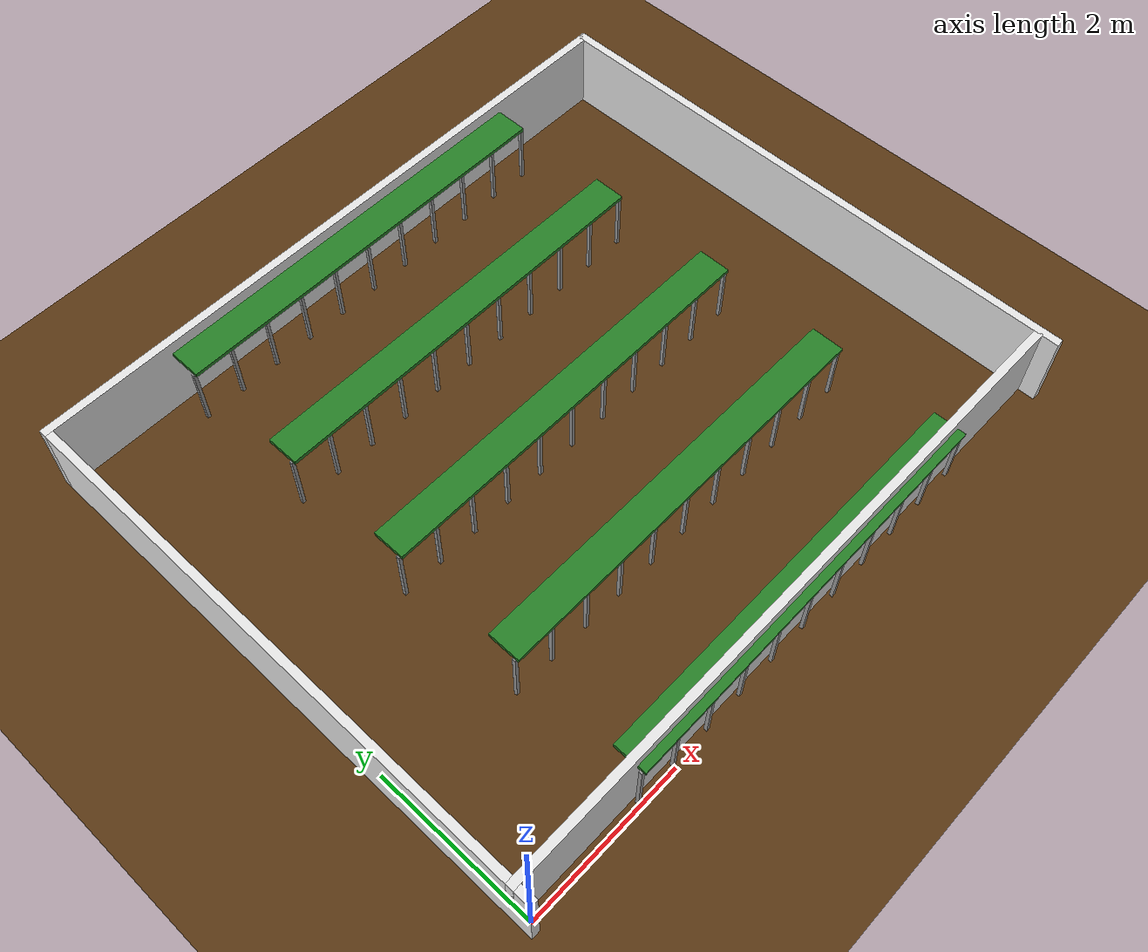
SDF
<?xml version="1.0"?>
<sdf version="1.6">
  <world name="greenhouse_5bed">
    <include><uri>model://sun</uri></include>
    <physics type="ode">
      <real_time_update_rate>1000.0</real_time_update_rate>
      <max_step_size>0.001</max_step_size>
    </physics>

    <!-- 바닥 -->
    <model name="floor"><static>true</static><link name="link">
      <collision name="col"><geometry><plane><normal>0 0 1</normal><size>20 20</size></plane></geometry></collision>
      <visual name="vis"><geometry><plane><normal>0 0 1</normal><size>20 20</size></plane></geometry>
        <material><ambient>0.35 0.22 0.08 1</ambient><diffuse>0.35 0.22 0.08 1</diffuse></material>
      </visual></link></model>

    <!-- 외벽 -->
    <model name="wall_front"><static>true</static>
      <pose>-0.05 3.40 0.5 0 0 0</pose>
      <link name="link"><collision name="col"><geometry><box><size>0.1 7.00 1.0</size></box></geometry></collision>
      <visual name="vis"><geometry><box><size>0.1 7.00 1.0</size></box></geometry>
        <material><ambient>0.9 0.9 0.9 1</ambient></material></visual></link></model>

    <model name="wall_back"><static>true</static>
      <pose>8.05 3.40 0.5 0 0 0</pose>
      <link name="link"><collision name="col"><geometry><box><size>0.1 7.00 1.0</size></box></geometry></collision>
      <visual name="vis"><geometry><box><size>0.1 7.00 1.0</size></box></geometry>
        <material><ambient>0.9 0.9 0.9 1</ambient></material></visual></link></model>

    <model name="wall_left"><static>true</static>
      <pose>4.0 0.15 0.5 0 0 0</pose>
      <link name="link"><collision name="col"><geometry><box><size>8.2 0.1 1.0</size></box></geometry></collision>
      <visual name="vis"><geometry><box><size>8.2 0.1 1.0</size></box></geometry>
        <material><ambient>0.9 0.9 0.9 1</ambient></material></visual></link></model>

    <model name="wall_right"><static>true</static>
      <pose>4.0 6.85 0.5 0 0 0</pose>
      <link name="link"><collision name="col"><geometry><box><size>8.2 0.1 1.0</size></box></geometry></collision>
      <visual name="vis"><geometry><box><size>8.2 0.1 1.0</size></box></geometry>
        <material><ambient>0.9 0.9 0.9 1</ambient></material></visual></link></model>

    <!--
      베드 수: 5
      베드 y 위치: ['0.2', '1.8', '3.4', '5.0', '6.6']
      통로 중심 y: ['1.00', '2.60', '4.20', '5.80']
      spawn: x=0, y=1.00 (통로1 중앙)
    -->
    <!-- ── 베드 1 (y=0.2) ── -->
    <model name="bed1_top"><static>true</static><pose>4.0 0.2 0.82 0 0 0</pose><link name="link"><collision name="col"><geometry><box><size>5.0 0.4 0.05</size></box></geometry></collision><visual name="vis"><geometry><box><size>5.0 0.4 0.05</size></box></geometry><material><ambient>0.15 0.5 0.15 1</ambient><diffuse>0.15 0.5 0.15 1</diffuse></material></visual></link></model>
    <model name="bed1_col_1"><static>true</static><pose>1.5 0.05 0.4 0 0 0</pose><link name="link"><collision name="col"><geometry><box><size>0.04 0.04 0.8</size></box></geometry></collision><visual name="vis"><geometry><box><size>0.04 0.04 0.8</size></box></geometry><material><ambient>0.6 0.6 0.6 1</ambient></material></visual></link></model>
    <model name="bed1_col_2"><static>true</static><pose>2.0 0.05 0.4 0 0 0</pose><link name="link"><collision name="col"><geometry><box><size>0.04 0.04 0.8</size></box></geometry></collision><visual name="vis"><geometry><box><size>0.04 0.04 0.8</size></box></geometry><material><ambient>0.6 0.6 0.6 1</ambient></material></visual></link></model>
    <model name="bed1_col_3"><static>true</static><pose>2.5 0.05 0.4 0 0 0</pose><link name="link"><collision name="col"><geometry><box><size>0.04 0.04 0.8</size></box></geometry></collision><visual name="vis"><geometry><box><size>0.04 0.04 0.8</size></box></geometry><material><ambient>0.6 0.6 0.6 1</ambient></material></visual></link></model>
    <model name="bed1_col_4"><static>true</static><pose>3.0 0.05 0.4 0 0 0</pose><link name="link"><collision name="col"><geometry><box><size>0.04 0.04 0.8</size></box></geometry></collision><visual name="vis"><geometry><box><size>0.04 0.04 0.8</size></box></geometry><material><ambient>0.6 0.6 0.6 1</ambient></material></visual></link></model>
    <model name="bed1_col_5"><static>true</static><pose>3.5 0.05 0.4 0 0 0</pose><link name="link"><collision name="col"><geometry><box><size>0.04 0.04 0.8</size></box></geometry></collision><visual name="vis"><geometry><box><size>0.04 0.04 0.8</size></box></geometry><material><ambient>0.6 0.6 0.6 1</ambient></material></visual></link></model>
    <model name="bed1_col_6"><static>true</static><pose>4.0 0.05 0.4 0 0 0</pose><link name="link"><collision name="col"><geometry><box><size>0.04 0.04 0.8</size></box></geometry></collision><visual name="vis"><geometry><box><size>0.04 0.04 0.8</size></box></geometry><material><ambient>0.6 0.6 0.6 1</ambient></material></visual></link></model>
    <model name="bed1_col_7"><static>true</static><pose>4.5 0.05 0.4 0 0 0</pose><link name="link"><collision name="col"><geometry><box><size>0.04 0.04 0.8</size></box></geometry></collision><visual name="vis"><geometry><box><size>0.04 0.04 0.8</size></box></geometry><material><ambient>0.6 0.6 0.6 1</ambient></material></visual></link></model>
    <model name="bed1_col_8"><static>true</static><pose>5.0 0.05 0.4 0 0 0</pose><link name="link"><collision name="col"><geometry><box><size>0.04 0.04 0.8</size></box></geometry></collision><visual name="vis"><geometry><box><size>0.04 0.04 0.8</size></box></geometry><material><ambient>0.6 0.6 0.6 1</ambient></material></visual></link></model>
    <model name="bed1_col_9"><static>true</static><pose>5.5 0.05 0.4 0 0 0</pose><link name="link"><collision name="col"><geometry><box><size>0.04 0.04 0.8</size></box></geometry></collision><visual name="vis"><geometry><box><size>0.04 0.04 0.8</size></box></geometry><material><ambient>0.6 0.6 0.6 1</ambient></material></visual></link></model>
    <model name="bed1_col_10"><static>true</static><pose>6.0 0.05 0.4 0 0 0</pose><link name="link"><collision name="col"><geometry><box><size>0.04 0.04 0.8</size></box></geometry></collision><visual name="vis"><geometry><box><size>0.04 0.04 0.8</size></box></geometry><material><ambient>0.6 0.6 0.6 1</ambient></material></visual></link></model>
    <model name="bed1_col_11"><static>true</static><pose>6.5 0.05 0.4 0 0 0</pose><link name="link"><collision name="col"><geometry><box><size>0.04 0.04 0.8</size></box></geometry></collision><visual name="vis"><geometry><box><size>0.04 0.04 0.8</size></box></geometry><material><ambient>0.6 0.6 0.6 1</ambient></material></visual></link></model>
    <!-- ── 베드 2 (y=1.8) ── -->
    <model name="bed2_top"><static>true</static><pose>4.0 1.8 0.82 0 0 0</pose><link name="link"><collision name="col"><geometry><box><size>5.0 0.4 0.05</size></box></geometry></collision><visual name="vis"><geometry><box><size>5.0 0.4 0.05</size></box></geometry><material><ambient>0.15 0.5 0.15 1</ambient><diffuse>0.15 0.5 0.15 1</diffuse></material></visual></link></model>
    <model name="bed2_col_1"><static>true</static><pose>1.5 1.65 0.4 0 0 0</pose><link name="link"><collision name="col"><geometry><box><size>0.04 0.04 0.8</size></box></geometry></collision><visual name="vis"><geometry><box><size>0.04 0.04 0.8</size></box></geometry><material><ambient>0.6 0.6 0.6 1</ambient></material></visual></link></model>
    <model name="bed2_col_2"><static>true</static><pose>2.0 1.65 0.4 0 0 0</pose><link name="link"><collision name="col"><geometry><box><size>0.04 0.04 0.8</size></box></geometry></collision><visual name="vis"><geometry><box><size>0.04 0.04 0.8</size></box></geometry><material><ambient>0.6 0.6 0.6 1</ambient></material></visual></link></model>
    <model name="bed2_col_3"><static>true</static><pose>2.5 1.65 0.4 0 0 0</pose><link name="link"><collision name="col"><geometry><box><size>0.04 0.04 0.8</size></box></geometry></collision><visual name="vis"><geometry><box><size>0.04 0.04 0.8</size></box></geometry><material><ambient>0.6 0.6 0.6 1</ambient></material></visual></link></model>
    <model name="bed2_col_4"><static>true</static><pose>3.0 1.65 0.4 0 0 0</pose><link name="link"><collision name="col"><geometry><box><size>0.04 0.04 0.8</size></box></geometry></collision><visual name="vis"><geometry><box><size>0.04 0.04 0.8</size></box></geometry><material><ambient>0.6 0.6 0.6 1</ambient></material></visual></link></model>
    <model name="bed2_col_5"><static>true</static><pose>3.5 1.65 0.4 0 0 0</pose><link name="link"><collision name="col"><geometry><box><size>0.04 0.04 0.8</size></box></geometry></collision><visual name="vis"><geometry><box><size>0.04 0.04 0.8</size></box></geometry><material><ambient>0.6 0.6 0.6 1</ambient></material></visual></link></model>
    <model name="bed2_col_6"><static>true</static><pose>4.0 1.65 0.4 0 0 0</pose><link name="link"><collision name="col"><geometry><box><size>0.04 0.04 0.8</size></box></geometry></collision><visual name="vis"><geometry><box><size>0.04 0.04 0.8</size></box></geometry><material><ambient>0.6 0.6 0.6 1</ambient></material></visual></link></model>
    <model name="bed2_col_7"><static>true</static><pose>4.5 1.65 0.4 0 0 0</pose><link name="link"><collision name="col"><geometry><box><size>0.04 0.04 0.8</size></box></geometry></collision><visual name="vis"><geometry><box><size>0.04 0.04 0.8</size></box></geometry><material><ambient>0.6 0.6 0.6 1</ambient></material></visual></link></model>
    <model name="bed2_col_8"><static>true</static><pose>5.0 1.65 0.4 0 0 0</pose><link name="link"><collision name="col"><geometry><box><size>0.04 0.04 0.8</size></box></geometry></collision><visual name="vis"><geometry><box><size>0.04 0.04 0.8</size></box></geometry><material><ambient>0.6 0.6 0.6 1</ambient></material></visual></link></model>
    <model name="bed2_col_9"><static>true</static><pose>5.5 1.65 0.4 0 0 0</pose><link name="link"><collision name="col"><geometry><box><size>0.04 0.04 0.8</size></box></geometry></collision><visual name="vis"><geometry><box><size>0.04 0.04 0.8</size></box></geometry><material><ambient>0.6 0.6 0.6 1</ambient></material></visual></link></model>
    <model name="bed2_col_10"><static>true</static><pose>6.0 1.65 0.4 0 0 0</pose><link name="link"><collision name="col"><geometry><box><size>0.04 0.04 0.8</size></box></geometry></collision><visual name="vis"><geometry><box><size>0.04 0.04 0.8</size></box></geometry><material><ambient>0.6 0.6 0.6 1</ambient></material></visual></link></model>
    <model name="bed2_col_11"><static>true</static><pose>6.5 1.65 0.4 0 0 0</pose><link name="link"><collision name="col"><geometry><box><size>0.04 0.04 0.8</size></box></geometry></collision><visual name="vis"><geometry><box><size>0.04 0.04 0.8</size></box></geometry><material><ambient>0.6 0.6 0.6 1</ambient></material></visual></link></model>
    <!-- ── 베드 3 (y=3.4000000000000004) ── -->
    <model name="bed3_top"><static>true</static><pose>4.0 3.4000000000000004 0.82 0 0 0</pose><link name="link"><collision name="col"><geometry><box><size>5.0 0.4 0.05</size></box></geometry></collision><visual name="vis"><geometry><box><size>5.0 0.4 0.05</size></box></geometry><material><ambient>0.15 0.5 0.15 1</ambient><diffuse>0.15 0.5 0.15 1</diffuse></material></visual></link></model>
    <model name="bed3_col_1"><static>true</static><pose>1.5 3.25 0.4 0 0 0</pose><link name="link"><collision name="col"><geometry><box><size>0.04 0.04 0.8</size></box></geometry></collision><visual name="vis"><geometry><box><size>0.04 0.04 0.8</size></box></geometry><material><ambient>0.6 0.6 0.6 1</ambient></material></visual></link></model>
    <model name="bed3_col_2"><static>true</static><pose>2.0 3.25 0.4 0 0 0</pose><link name="link"><collision name="col"><geometry><box><size>0.04 0.04 0.8</size></box></geometry></collision><visual name="vis"><geometry><box><size>0.04 0.04 0.8</size></box></geometry><material><ambient>0.6 0.6 0.6 1</ambient></material></visual></link></model>
    <model name="bed3_col_3"><static>true</static><pose>2.5 3.25 0.4 0 0 0</pose><link name="link"><collision name="col"><geometry><box><size>0.04 0.04 0.8</size></box></geometry></collision><visual name="vis"><geometry><box><size>0.04 0.04 0.8</size></box></geometry><material><ambient>0.6 0.6 0.6 1</ambient></material></visual></link></model>
    <model name="bed3_col_4"><static>true</static><pose>3.0 3.25 0.4 0 0 0</pose><link name="link"><collision name="col"><geometry><box><size>0.04 0.04 0.8</size></box></geometry></collision><visual name="vis"><geometry><box><size>0.04 0.04 0.8</size></box></geometry><material><ambient>0.6 0.6 0.6 1</ambient></material></visual></link></model>
    <model name="bed3_col_5"><static>true</static><pose>3.5 3.25 0.4 0 0 0</pose><link name="link"><collision name="col"><geometry><box><size>0.04 0.04 0.8</size></box></geometry></collision><visual name="vis"><geometry><box><size>0.04 0.04 0.8</size></box></geometry><material><ambient>0.6 0.6 0.6 1</ambient></material></visual></link></model>
    <model name="bed3_col_6"><static>true</static><pose>4.0 3.25 0.4 0 0 0</pose><link name="link"><collision name="col"><geometry><box><size>0.04 0.04 0.8</size></box></geometry></collision><visual name="vis"><geometry><box><size>0.04 0.04 0.8</size></box></geometry><material><ambient>0.6 0.6 0.6 1</ambient></material></visual></link></model>
    <model name="bed3_col_7"><static>true</static><pose>4.5 3.25 0.4 0 0 0</pose><link name="link"><collision name="col"><geometry><box><size>0.04 0.04 0.8</size></box></geometry></collision><visual name="vis"><geometry><box><size>0.04 0.04 0.8</size></box></geometry><material><ambient>0.6 0.6 0.6 1</ambient></material></visual></link></model>
    <model name="bed3_col_8"><static>true</static><pose>5.0 3.25 0.4 0 0 0</pose><link name="link"><collision name="col"><geometry><box><size>0.04 0.04 0.8</size></box></geometry></collision><visual name="vis"><geometry><box><size>0.04 0.04 0.8</size></box></geometry><material><ambient>0.6 0.6 0.6 1</ambient></material></visual></link></model>
    <model name="bed3_col_9"><static>true</static><pose>5.5 3.25 0.4 0 0 0</pose><link name="link"><collision name="col"><geometry><box><size>0.04 0.04 0.8</size></box></geometry></collision><visual name="vis"><geometry><box><size>0.04 0.04 0.8</size></box></geometry><material><ambient>0.6 0.6 0.6 1</ambient></material></visual></link></model>
    <model name="bed3_col_10"><static>true</static><pose>6.0 3.25 0.4 0 0 0</pose><link name="link"><collision name="col"><geometry><box><size>0.04 0.04 0.8</size></box></geometry></collision><visual name="vis"><geometry><box><size>0.04 0.04 0.8</size></box></geometry><material><ambient>0.6 0.6 0.6 1</ambient></material></visual></link></model>
    <model name="bed3_col_11"><static>true</static><pose>6.5 3.25 0.4 0 0 0</pose><link name="link"><collision name="col"><geometry><box><size>0.04 0.04 0.8</size></box></geometry></collision><visual name="vis"><geometry><box><size>0.04 0.04 0.8</size></box></geometry><material><ambient>0.6 0.6 0.6 1</ambient></material></visual></link></model>
    <!-- ── 베드 4 (y=5.000000000000001) ── -->
    <model name="bed4_top"><static>true</static><pose>4.0 5.000000000000001 0.82 0 0 0</pose><link name="link"><collision name="col"><geometry><box><size>5.0 0.4 0.05</size></box></geometry></collision><visual name="vis"><geometry><box><size>5.0 0.4 0.05</size></box></geometry><material><ambient>0.15 0.5 0.15 1</ambient><diffuse>0.15 0.5 0.15 1</diffuse></material></visual></link></model>
    <model name="bed4_col_1"><static>true</static><pose>1.5 4.85 0.4 0 0 0</pose><link name="link"><collision name="col"><geometry><box><size>0.04 0.04 0.8</size></box></geometry></collision><visual name="vis"><geometry><box><size>0.04 0.04 0.8</size></box></geometry><material><ambient>0.6 0.6 0.6 1</ambient></material></visual></link></model>
    <model name="bed4_col_2"><static>true</static><pose>2.0 4.85 0.4 0 0 0</pose><link name="link"><collision name="col"><geometry><box><size>0.04 0.04 0.8</size></box></geometry></collision><visual name="vis"><geometry><box><size>0.04 0.04 0.8</size></box></geometry><material><ambient>0.6 0.6 0.6 1</ambient></material></visual></link></model>
    <model name="bed4_col_3"><static>true</static><pose>2.5 4.85 0.4 0 0 0</pose><link name="link"><collision name="col"><geometry><box><size>0.04 0.04 0.8</size></box></geometry></collision><visual name="vis"><geometry><box><size>0.04 0.04 0.8</size></box></geometry><material><ambient>0.6 0.6 0.6 1</ambient></material></visual></link></model>
    <model name="bed4_col_4"><static>true</static><pose>3.0 4.85 0.4 0 0 0</pose><link name="link"><collision name="col"><geometry><box><size>0.04 0.04 0.8</size></box></geometry></collision><visual name="vis"><geometry><box><size>0.04 0.04 0.8</size></box></geometry><material><ambient>0.6 0.6 0.6 1</ambient></material></visual></link></model>
    <model name="bed4_col_5"><static>true</static><pose>3.5 4.85 0.4 0 0 0</pose><link name="link"><collision name="col"><geometry><box><size>0.04 0.04 0.8</size></box></geometry></collision><visual name="vis"><geometry><box><size>0.04 0.04 0.8</size></box></geometry><material><ambient>0.6 0.6 0.6 1</ambient></material></visual></link></model>
    <model name="bed4_col_6"><static>true</static><pose>4.0 4.85 0.4 0 0 0</pose><link name="link"><collision name="col"><geometry><box><size>0.04 0.04 0.8</size></box></geometry></collision><visual name="vis"><geometry><box><size>0.04 0.04 0.8</size></box></geometry><material><ambient>0.6 0.6 0.6 1</ambient></material></visual></link></model>
    <model name="bed4_col_7"><static>true</static><pose>4.5 4.85 0.4 0 0 0</pose><link name="link"><collision name="col"><geometry><box><size>0.04 0.04 0.8</size></box></geometry></collision><visual name="vis"><geometry><box><size>0.04 0.04 0.8</size></box></geometry><material><ambient>0.6 0.6 0.6 1</ambient></material></visual></link></model>
    <model name="bed4_col_8"><static>true</static><pose>5.0 4.85 0.4 0 0 0</pose><link name="link"><collision name="col"><geometry><box><size>0.04 0.04 0.8</size></box></geometry></collision><visual name="vis"><geometry><box><size>0.04 0.04 0.8</size></box></geometry><material><ambient>0.6 0.6 0.6 1</ambient></material></visual></link></model>
    <model name="bed4_col_9"><static>true</static><pose>5.5 4.85 0.4 0 0 0</pose><link name="link"><collision name="col"><geometry><box><size>0.04 0.04 0.8</size></box></geometry></collision><visual name="vis"><geometry><box><size>0.04 0.04 0.8</size></box></geometry><material><ambient>0.6 0.6 0.6 1</ambient></material></visual></link></model>
    <model name="bed4_col_10"><static>true</static><pose>6.0 4.85 0.4 0 0 0</pose><link name="link"><collision name="col"><geometry><box><size>0.04 0.04 0.8</size></box></geometry></collision><visual name="vis"><geometry><box><size>0.04 0.04 0.8</size></box></geometry><material><ambient>0.6 0.6 0.6 1</ambient></material></visual></link></model>
    <model name="bed4_col_11"><static>true</static><pose>6.5 4.85 0.4 0 0 0</pose><link name="link"><collision name="col"><geometry><box><size>0.04 0.04 0.8</size></box></geometry></collision><visual name="vis"><geometry><box><size>0.04 0.04 0.8</size></box></geometry><material><ambient>0.6 0.6 0.6 1</ambient></material></visual></link></model>
    <!-- ── 베드 5 (y=6.6000000000000005) ── -->
    <model name="bed5_top"><static>true</static><pose>4.0 6.6000000000000005 0.82 0 0 0</pose><link name="link"><collision name="col"><geometry><box><size>5.0 0.4 0.05</size></box></geometry></collision><visual name="vis"><geometry><box><size>5.0 0.4 0.05</size></box></geometry><material><ambient>0.15 0.5 0.15 1</ambient><diffuse>0.15 0.5 0.15 1</diffuse></material></visual></link></model>
    <model name="bed5_col_1"><static>true</static><pose>1.5 6.45 0.4 0 0 0</pose><link name="link"><collision name="col"><geometry><box><size>0.04 0.04 0.8</size></box></geometry></collision><visual name="vis"><geometry><box><size>0.04 0.04 0.8</size></box></geometry><material><ambient>0.6 0.6 0.6 1</ambient></material></visual></link></model>
    <model name="bed5_col_2"><static>true</static><pose>2.0 6.45 0.4 0 0 0</pose><link name="link"><collision name="col"><geometry><box><size>0.04 0.04 0.8</size></box></geometry></collision><visual name="vis"><geometry><box><size>0.04 0.04 0.8</size></box></geometry><material><ambient>0.6 0.6 0.6 1</ambient></material></visual></link></model>
    <model name="bed5_col_3"><static>true</static><pose>2.5 6.45 0.4 0 0 0</pose><link name="link"><collision name="col"><geometry><box><size>0.04 0.04 0.8</size></box></geometry></collision><visual name="vis"><geometry><box><size>0.04 0.04 0.8</size></box></geometry><material><ambient>0.6 0.6 0.6 1</ambient></material></visual></link></model>
    <model name="bed5_col_4"><static>true</static><pose>3.0 6.45 0.4 0 0 0</pose><link name="link"><collision name="col"><geometry><box><size>0.04 0.04 0.8</size></box></geometry></collision><visual name="vis"><geometry><box><size>0.04 0.04 0.8</size></box></geometry><material><ambient>0.6 0.6 0.6 1</ambient></material></visual></link></model>
    <model name="bed5_col_5"><static>true</static><pose>3.5 6.45 0.4 0 0 0</pose><link name="link"><collision name="col"><geometry><box><size>0.04 0.04 0.8</size></box></geometry></collision><visual name="vis"><geometry><box><size>0.04 0.04 0.8</size></box></geometry><material><ambient>0.6 0.6 0.6 1</ambient></material></visual></link></model>
    <model name="bed5_col_6"><static>true</static><pose>4.0 6.45 0.4 0 0 0</pose><link name="link"><collision name="col"><geometry><box><size>0.04 0.04 0.8</size></box></geometry></collision><visual name="vis"><geometry><box><size>0.04 0.04 0.8</size></box></geometry><material><ambient>0.6 0.6 0.6 1</ambient></material></visual></link></model>
    <model name="bed5_col_7"><static>true</static><pose>4.5 6.45 0.4 0 0 0</pose><link name="link"><collision name="col"><geometry><box><size>0.04 0.04 0.8</size></box></geometry></collision><visual name="vis"><geometry><box><size>0.04 0.04 0.8</size></box></geometry><material><ambient>0.6 0.6 0.6 1</ambient></material></visual></link></model>
    <model name="bed5_col_8"><static>true</static><pose>5.0 6.45 0.4 0 0 0</pose><link name="link"><collision name="col"><geometry><box><size>0.04 0.04 0.8</size></box></geometry></collision><visual name="vis"><geometry><box><size>0.04 0.04 0.8</size></box></geometry><material><ambient>0.6 0.6 0.6 1</ambient></material></visual></link></model>
    <model name="bed5_col_9"><static>true</static><pose>5.5 6.45 0.4 0 0 0</pose><link name="link"><collision name="col"><geometry><box><size>0.04 0.04 0.8</size></box></geometry></collision><visual name="vis"><geometry><box><size>0.04 0.04 0.8</size></box></geometry><material><ambient>0.6 0.6 0.6 1</ambient></material></visual></link></model>
    <model name="bed5_col_10"><static>true</static><pose>6.0 6.45 0.4 0 0 0</pose><link name="link"><collision name="col"><geometry><box><size>0.04 0.04 0.8</size></box></geometry></collision><visual name="vis"><geometry><box><size>0.04 0.04 0.8</size></box></geometry><material><ambient>0.6 0.6 0.6 1</ambient></material></visual></link></model>
    <model name="bed5_col_11"><static>true</static><pose>6.5 6.45 0.4 0 0 0</pose><link name="link"><collision name="col"><geometry><box><size>0.04 0.04 0.8</size></box></geometry></collision><visual name="vis"><geometry><box><size>0.04 0.04 0.8</size></box></geometry><material><ambient>0.6 0.6 0.6 1</ambient></material></visual></link></model>
  </world>
</sdf>
